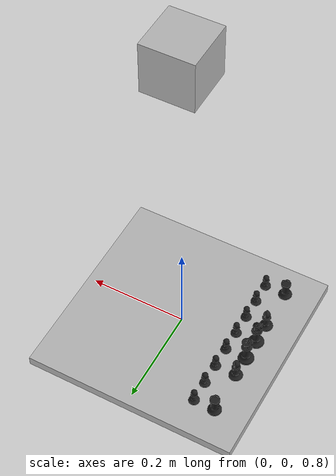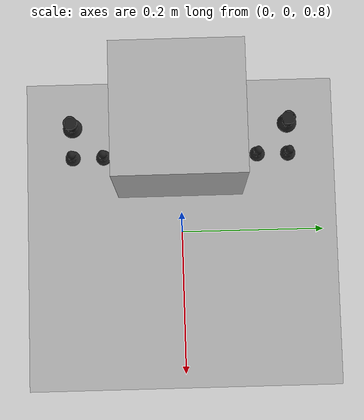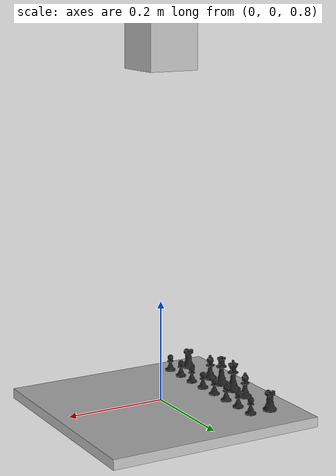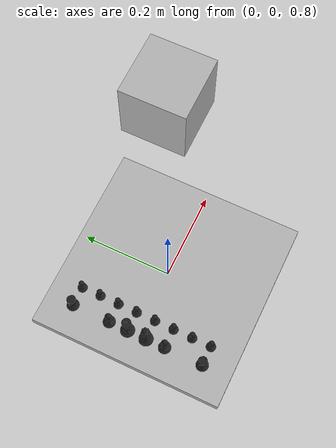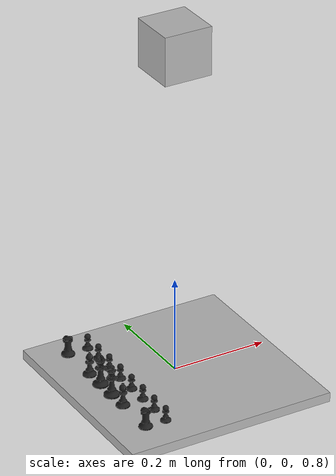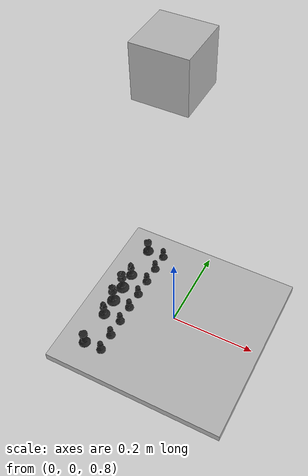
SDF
<sdf version="1.6">
 <world name="ur3_chess_game">
  <include><uri>model://sun</uri></include>
  <model name="camera">
   <static>1</static>
   <pose>0 0 1.50 3.14 1.57 0</pose>
   <link name="link">
    <visual name="visual"><geometry><box><size>0.1 0.1 0.1</size></box></geometry></visual>
    <sensor name="camera" type="camera">
     <camera>
      <save enabled="1"><path>/tmp/camera_out</path></save>
      <horizontal_fov>1.047</horizontal_fov>
      <image><width>1280</width><height>720</height></image>
      <clip><near>0.1</near><far>100</far></clip>
     </camera>
     <always_on>1</always_on>
     <update_rate>20</update_rate>
     <plugin name="camera_controller" filename="libgazebo_ros_camera.so">
      <alwaysOn>1</alwaysOn>
      <updateRate>0.0</updateRate>
      <cameraName>camera</cameraName>
      <imageTopicName>image_raw</imageTopicName>
      <cameraInfoTopicName>camera_info</cameraInfoTopicName>
      <frameName>camera_link_optical</frameName>
      <hackBaseline>0.0</hackBaseline>
      <distortionK1>0.0</distortionK1>
      <distortionK2>0.0</distortionK2>
      <distortionK3>0.0</distortionK3>
      <distortionT1>0.0</distortionT1>
      <distortionT2>0.0</distortionT2>
      <CxPrime>0</CxPrime>
      <Cx>0.0</Cx>
      <Cy>0.0</Cy>
      <focalLength>0.0</focalLength>
     </plugin>
    </sensor>
   </link>
  </model>
  <model name="chess_board">
   <pose>0 0 0.785 0 0 0</pose>
   <link name="link">
    <inertial>
     <mass>0.5</mass>
     <inertia>
      <ixx>0.166667</ixx>
      <ixy>0</ixy>
      <ixz>0</ixz>
      <iyy>0.166667</iyy>
      <iyz>0</iyz>
      <izz>0.166667</izz>
     </inertia>
    </inertial>
    <visual name="visual">
     <geometry><box><size>0.44 0.44 0.02</size></box></geometry>
     <material>
      <script>
       <name>ChessBoardMaterial</name>
       <uri>model://chess_board/materials/scripts</uri>
       <uri>model://chess_board/materials/textures</uri>
      </script>
     </material>
    </visual>
    <collision name="collision">
     <geometry><box><size>0.44 0.44 0.02</size></box></geometry>
     <surface>
      <friction>
       <ode><mu>1</mu><mu2>1</mu2><fdir1>0 0 0</fdir1><slip1>0</slip1><slip2>0</slip2></ode>
       <torsional>
        <coefficient>1</coefficient>
        <patch_radius>0</patch_radius>
        <surface_radius>0</surface_radius>
        <use_patch_radius>1</use_patch_radius>
        <ode><slip>0</slip></ode>
       </torsional>
      </friction>
      <bounce><restitution_coefficient>0</restitution_coefficient><threshold>1e+06</threshold></bounce>
      <contact>
       <collide_without_contact>0</collide_without_contact>
       <collide_without_contact_bitmask>1</collide_without_contact_bitmask>
       <collide_bitmask>1</collide_bitmask>
       <ode>
        <soft_cfm>0</soft_cfm>
        <soft_erp>0.2</soft_erp>
        <kp>1e+13</kp>
        <kd>1</kd>
        <max_vel>0.01</max_vel>
        <min_depth>0</min_depth>
       </ode>
       <bullet>
        <split_impulse>1</split_impulse>
        <split_impulse_penetration_threshold>-0.01</split_impulse_penetration_threshold>
        <soft_cfm>0</soft_cfm>
        <soft_erp>0.2</soft_erp>
        <kp>1e+13</kp>
        <kd>1</kd>
       </bullet>
      </contact>
     </surface>
    </collision>
   </link>
   <static>0</static>
  </model>
  <model name="pawn_black_1">
   <pose>-0.11 0.154 0.8 0 0 0</pose>
   <link name="link">
    <inertial>
     <mass>0.1</mass>
     <inertia>
      <ixx>0.166667</ixx>
      <ixy>0</ixy>
      <ixz>0</ixz>
      <iyy>0.166667</iyy>
      <iyz>0</iyz>
      <izz>0.166667</izz>
     </inertia>
    </inertial>
    <visual name="visual">
     <geometry><mesh><uri>model://pawn_black/pawn.stl</uri><scale>0.001 0.001 0.001</scale></mesh></geometry>
     <material>
      <lighting>1</lighting>
      <script><uri>file://media/materials/scripts/gazebo.material</uri><name>Gazebo/Black</name></script>
      <shader type="pixel"><normal_map>__default__</normal_map></shader>
      <ambient>0.3 0.3 0.3 1</ambient>
      <diffuse>0.3 0.3 0.3 1</diffuse>
      <specular>0.1 0.1 0.1 1</specular>
      <emissive>0 0 0 1</emissive>
     </material>
    </visual>
    <collision name="collision">
     <geometry><mesh><uri>model://pawn_black/pawn.stl</uri><scale>0.001 0.001 0.001</scale></mesh></geometry>
     <surface>
      <friction>
       <ode><mu>1</mu><mu2>1</mu2><fdir1>0 0 0</fdir1><slip1>0</slip1><slip2>0</slip2></ode>
       <torsional>
        <coefficient>1</coefficient>
        <patch_radius>0</patch_radius>
        <surface_radius>0</surface_radius>
        <use_patch_radius>1</use_patch_radius>
        <ode><slip>0</slip></ode>
       </torsional>
      </friction>
      <bounce><restitution_coefficient>0</restitution_coefficient><threshold>1e+06</threshold></bounce>
      <contact>
       <collide_without_contact>0</collide_without_contact>
       <collide_without_contact_bitmask>1</collide_without_contact_bitmask>
       <collide_bitmask>1</collide_bitmask>
       <ode>
        <soft_cfm>0</soft_cfm>
        <soft_erp>0.2</soft_erp>
        <kp>1e+13</kp>
        <kd>1</kd>
        <max_vel>0.01</max_vel>
        <min_depth>0</min_depth>
       </ode>
       <bullet>
        <split_impulse>1</split_impulse>
        <split_impulse_penetration_threshold>-0.01</split_impulse_penetration_threshold>
        <soft_cfm>0</soft_cfm>
        <soft_erp>0.2</soft_erp>
        <kp>1e+13</kp>
        <kd>1</kd>
       </bullet>
      </contact>
     </surface>
    </collision>
   </link>
   <static>0</static>
  </model>
  <model name="pawn_black_2">
   <pose>-0.11 0.11 0.8 0 0 0</pose>
   <link name="link">
    <inertial>
     <mass>0.1</mass>
     <inertia>
      <ixx>0.166667</ixx>
      <ixy>0</ixy>
      <ixz>0</ixz>
      <iyy>0.166667</iyy>
      <iyz>0</iyz>
      <izz>0.166667</izz>
     </inertia>
    </inertial>
    <visual name="visual">
     <geometry><mesh><uri>model://pawn_black/pawn.stl</uri><scale>0.001 0.001 0.001</scale></mesh></geometry>
     <material>
      <lighting>1</lighting>
      <script><uri>file://media/materials/scripts/gazebo.material</uri><name>Gazebo/Black</name></script>
      <shader type="pixel"><normal_map>__default__</normal_map></shader>
      <ambient>0.3 0.3 0.3 1</ambient>
      <diffuse>0.3 0.3 0.3 1</diffuse>
      <specular>0.1 0.1 0.1 1</specular>
      <emissive>0 0 0 1</emissive>
     </material>
    </visual>
    <collision name="collision">
     <geometry><mesh><uri>model://pawn_black/pawn.stl</uri><scale>0.001 0.001 0.001</scale></mesh></geometry>
     <surface>
      <friction>
       <ode><mu>1</mu><mu2>1</mu2><fdir1>0 0 0</fdir1><slip1>0</slip1><slip2>0</slip2></ode>
       <torsional>
        <coefficient>1</coefficient>
        <patch_radius>0</patch_radius>
        <surface_radius>0</surface_radius>
        <use_patch_radius>1</use_patch_radius>
        <ode><slip>0</slip></ode>
       </torsional>
      </friction>
      <bounce><restitution_coefficient>0</restitution_coefficient><threshold>1e+06</threshold></bounce>
      <contact>
       <collide_without_contact>0</collide_without_contact>
       <collide_without_contact_bitmask>1</collide_without_contact_bitmask>
       <collide_bitmask>1</collide_bitmask>
       <ode>
        <soft_cfm>0</soft_cfm>
        <soft_erp>0.2</soft_erp>
        <kp>1e+13</kp>
        <kd>1</kd>
        <max_vel>0.01</max_vel>
        <min_depth>0</min_depth>
       </ode>
       <bullet>
        <split_impulse>1</split_impulse>
        <split_impulse_penetration_threshold>-0.01</split_impulse_penetration_threshold>
        <soft_cfm>0</soft_cfm>
        <soft_erp>0.2</soft_erp>
        <kp>1e+13</kp>
        <kd>1</kd>
       </bullet>
      </contact>
     </surface>
    </collision>
   </link>
   <static>0</static>
  </model>
  <model name="pawn_black_3">
   <pose>-0.11 0.066 0.8 0 0 0</pose>
   <link name="link">
    <inertial>
     <mass>0.1</mass>
     <inertia>
      <ixx>0.166667</ixx>
      <ixy>0</ixy>
      <ixz>0</ixz>
      <iyy>0.166667</iyy>
      <iyz>0</iyz>
      <izz>0.166667</izz>
     </inertia>
    </inertial>
    <visual name="visual">
     <geometry><mesh><uri>model://pawn_black/pawn.stl</uri><scale>0.001 0.001 0.001</scale></mesh></geometry>
     <material>
      <lighting>1</lighting>
      <script><uri>file://media/materials/scripts/gazebo.material</uri><name>Gazebo/Black</name></script>
      <shader type="pixel"><normal_map>__default__</normal_map></shader>
      <ambient>0.3 0.3 0.3 1</ambient>
      <diffuse>0.3 0.3 0.3 1</diffuse>
      <specular>0.1 0.1 0.1 1</specular>
      <emissive>0 0 0 1</emissive>
     </material>
    </visual>
    <collision name="collision">
     <geometry><mesh><uri>model://pawn_black/pawn.stl</uri><scale>0.001 0.001 0.001</scale></mesh></geometry>
     <surface>
      <friction>
       <ode><mu>1</mu><mu2>1</mu2><fdir1>0 0 0</fdir1><slip1>0</slip1><slip2>0</slip2></ode>
       <torsional>
        <coefficient>1</coefficient>
        <patch_radius>0</patch_radius>
        <surface_radius>0</surface_radius>
        <use_patch_radius>1</use_patch_radius>
        <ode><slip>0</slip></ode>
       </torsional>
      </friction>
      <bounce><restitution_coefficient>0</restitution_coefficient><threshold>1e+06</threshold></bounce>
      <contact>
       <collide_without_contact>0</collide_without_contact>
       <collide_without_contact_bitmask>1</collide_without_contact_bitmask>
       <collide_bitmask>1</collide_bitmask>
       <ode>
        <soft_cfm>0</soft_cfm>
        <soft_erp>0.2</soft_erp>
        <kp>1e+13</kp>
        <kd>1</kd>
        <max_vel>0.01</max_vel>
        <min_depth>0</min_depth>
       </ode>
       <bullet>
        <split_impulse>1</split_impulse>
        <split_impulse_penetration_threshold>-0.01</split_impulse_penetration_threshold>
        <soft_cfm>0</soft_cfm>
        <soft_erp>0.2</soft_erp>
        <kp>1e+13</kp>
        <kd>1</kd>
       </bullet>
      </contact>
     </surface>
    </collision>
   </link>
   <static>0</static>
  </model>
  <model name="pawn_black_4">
   <pose>-0.11 0.022 0.8 0 0 0</pose>
   <link name="link">
    <inertial>
     <mass>0.1</mass>
     <inertia>
      <ixx>0.166667</ixx>
      <ixy>0</ixy>
      <ixz>0</ixz>
      <iyy>0.166667</iyy>
      <iyz>0</iyz>
      <izz>0.166667</izz>
     </inertia>
    </inertial>
    <visual name="visual">
     <geometry><mesh><uri>model://pawn_black/pawn.stl</uri><scale>0.001 0.001 0.001</scale></mesh></geometry>
     <material>
      <lighting>1</lighting>
      <script><uri>file://media/materials/scripts/gazebo.material</uri><name>Gazebo/Black</name></script>
      <shader type="pixel"><normal_map>__default__</normal_map></shader>
      <ambient>0.3 0.3 0.3 1</ambient>
      <diffuse>0.3 0.3 0.3 1</diffuse>
      <specular>0.1 0.1 0.1 1</specular>
      <emissive>0 0 0 1</emissive>
     </material>
    </visual>
    <collision name="collision">
     <geometry><mesh><uri>model://pawn_black/pawn.stl</uri><scale>0.001 0.001 0.001</scale></mesh></geometry>
     <surface>
      <friction>
       <ode><mu>1</mu><mu2>1</mu2><fdir1>0 0 0</fdir1><slip1>0</slip1><slip2>0</slip2></ode>
       <torsional>
        <coefficient>1</coefficient>
        <patch_radius>0</patch_radius>
        <surface_radius>0</surface_radius>
        <use_patch_radius>1</use_patch_radius>
        <ode><slip>0</slip></ode>
       </torsional>
      </friction>
      <bounce><restitution_coefficient>0</restitution_coefficient><threshold>1e+06</threshold></bounce>
      <contact>
       <collide_without_contact>0</collide_without_contact>
       <collide_without_contact_bitmask>1</collide_without_contact_bitmask>
       <collide_bitmask>1</collide_bitmask>
       <ode>
        <soft_cfm>0</soft_cfm>
        <soft_erp>0.2</soft_erp>
        <kp>1e+13</kp>
        <kd>1</kd>
        <max_vel>0.01</max_vel>
        <min_depth>0</min_depth>
       </ode>
       <bullet>
        <split_impulse>1</split_impulse>
        <split_impulse_penetration_threshold>-0.01</split_impulse_penetration_threshold>
        <soft_cfm>0</soft_cfm>
        <soft_erp>0.2</soft_erp>
        <kp>1e+13</kp>
        <kd>1</kd>
       </bullet>
      </contact>
     </surface>
    </collision>
   </link>
   <static>0</static>
  </model>
  <model name="pawn_black_5">
   <pose>-0.11 -0.022 0.8 0 0 0</pose>
   <link name="link">
    <inertial>
     <mass>0.1</mass>
     <inertia>
      <ixx>0.166667</ixx>
      <ixy>0</ixy>
      <ixz>0</ixz>
      <iyy>0.166667</iyy>
      <iyz>0</iyz>
      <izz>0.166667</izz>
     </inertia>
    </inertial>
    <visual name="visual">
     <geometry><mesh><uri>model://pawn_black/pawn.stl</uri><scale>0.001 0.001 0.001</scale></mesh></geometry>
     <material>
      <lighting>1</lighting>
      <script><uri>file://media/materials/scripts/gazebo.material</uri><name>Gazebo/Black</name></script>
      <shader type="pixel"><normal_map>__default__</normal_map></shader>
      <ambient>0.3 0.3 0.3 1</ambient>
      <diffuse>0.3 0.3 0.3 1</diffuse>
      <specular>0.1 0.1 0.1 1</specular>
      <emissive>0 0 0 1</emissive>
     </material>
    </visual>
    <collision name="collision">
     <geometry><mesh><uri>model://pawn_black/pawn.stl</uri><scale>0.001 0.001 0.001</scale></mesh></geometry>
     <surface>
      <friction>
       <ode><mu>1</mu><mu2>1</mu2><fdir1>0 0 0</fdir1><slip1>0</slip1><slip2>0</slip2></ode>
       <torsional>
        <coefficient>1</coefficient>
        <patch_radius>0</patch_radius>
        <surface_radius>0</surface_radius>
        <use_patch_radius>1</use_patch_radius>
        <ode><slip>0</slip></ode>
       </torsional>
      </friction>
      <bounce><restitution_coefficient>0</restitution_coefficient><threshold>1e+06</threshold></bounce>
      <contact>
       <collide_without_contact>0</collide_without_contact>
       <collide_without_contact_bitmask>1</collide_without_contact_bitmask>
       <collide_bitmask>1</collide_bitmask>
       <ode>
        <soft_cfm>0</soft_cfm>
        <soft_erp>0.2</soft_erp>
        <kp>1e+13</kp>
        <kd>1</kd>
        <max_vel>0.01</max_vel>
        <min_depth>0</min_depth>
       </ode>
       <bullet>
        <split_impulse>1</split_impulse>
        <split_impulse_penetration_threshold>-0.01</split_impulse_penetration_threshold>
        <soft_cfm>0</soft_cfm>
        <soft_erp>0.2</soft_erp>
        <kp>1e+13</kp>
        <kd>1</kd>
       </bullet>
      </contact>
     </surface>
    </collision>
   </link>
   <static>0</static>
  </model>
  <model name="pawn_black_6">
   <pose>-0.11 -0.066 0.8 0 0 0</pose>
   <link name="link">
    <inertial>
     <mass>0.1</mass>
     <inertia>
      <ixx>0.166667</ixx>
      <ixy>0</ixy>
      <ixz>0</ixz>
      <iyy>0.166667</iyy>
      <iyz>0</iyz>
      <izz>0.166667</izz>
     </inertia>
    </inertial>
    <visual name="visual">
     <geometry><mesh><uri>model://pawn_black/pawn.stl</uri><scale>0.001 0.001 0.001</scale></mesh></geometry>
     <material>
      <lighting>1</lighting>
      <script><uri>file://media/materials/scripts/gazebo.material</uri><name>Gazebo/Black</name></script>
      <shader type="pixel"><normal_map>__default__</normal_map></shader>
      <ambient>0.3 0.3 0.3 1</ambient>
      <diffuse>0.3 0.3 0.3 1</diffuse>
      <specular>0.1 0.1 0.1 1</specular>
      <emissive>0 0 0 1</emissive>
     </material>
    </visual>
    <collision name="collision">
     <geometry><mesh><uri>model://pawn_black/pawn.stl</uri><scale>0.001 0.001 0.001</scale></mesh></geometry>
     <surface>
      <friction>
       <ode><mu>1</mu><mu2>1</mu2><fdir1>0 0 0</fdir1><slip1>0</slip1><slip2>0</slip2></ode>
       <torsional>
        <coefficient>1</coefficient>
        <patch_radius>0</patch_radius>
        <surface_radius>0</surface_radius>
        <use_patch_radius>1</use_patch_radius>
        <ode><slip>0</slip></ode>
       </torsional>
      </friction>
      <bounce><restitution_coefficient>0</restitution_coefficient><threshold>1e+06</threshold></bounce>
      <contact>
       <collide_without_contact>0</collide_without_contact>
       <collide_without_contact_bitmask>1</collide_without_contact_bitmask>
       <collide_bitmask>1</collide_bitmask>
       <ode>
        <soft_cfm>0</soft_cfm>
        <soft_erp>0.2</soft_erp>
        <kp>1e+13</kp>
        <kd>1</kd>
        <max_vel>0.01</max_vel>
        <min_depth>0</min_depth>
       </ode>
       <bullet>
        <split_impulse>1</split_impulse>
        <split_impulse_penetration_threshold>-0.01</split_impulse_penetration_threshold>
        <soft_cfm>0</soft_cfm>
        <soft_erp>0.2</soft_erp>
        <kp>1e+13</kp>
        <kd>1</kd>
       </bullet>
      </contact>
     </surface>
    </collision>
   </link>
   <static>0</static>
  </model>
  <model name="pawn_black_7">
   <pose>-0.11 -0.11 0.8 0 0 0</pose>
   <link name="link">
    <inertial>
     <mass>0.1</mass>
     <inertia>
      <ixx>0.166667</ixx>
      <ixy>0</ixy>
      <ixz>0</ixz>
      <iyy>0.166667</iyy>
      <iyz>0</iyz>
      <izz>0.166667</izz>
     </inertia>
    </inertial>
    <visual name="visual">
     <geometry><mesh><uri>model://pawn_black/pawn.stl</uri><scale>0.001 0.001 0.001</scale></mesh></geometry>
     <material>
      <lighting>1</lighting>
      <script><uri>file://media/materials/scripts/gazebo.material</uri><name>Gazebo/Black</name></script>
      <shader type="pixel"><normal_map>__default__</normal_map></shader>
      <ambient>0.3 0.3 0.3 1</ambient>
      <diffuse>0.3 0.3 0.3 1</diffuse>
      <specular>0.1 0.1 0.1 1</specular>
      <emissive>0 0 0 1</emissive>
     </material>
    </visual>
    <collision name="collision">
     <geometry><mesh><uri>model://pawn_black/pawn.stl</uri><scale>0.001 0.001 0.001</scale></mesh></geometry>
     <surface>
      <friction>
       <ode><mu>1</mu><mu2>1</mu2><fdir1>0 0 0</fdir1><slip1>0</slip1><slip2>0</slip2></ode>
       <torsional>
        <coefficient>1</coefficient>
        <patch_radius>0</patch_radius>
        <surface_radius>0</surface_radius>
        <use_patch_radius>1</use_patch_radius>
        <ode><slip>0</slip></ode>
       </torsional>
      </friction>
      <bounce><restitution_coefficient>0</restitution_coefficient><threshold>1e+06</threshold></bounce>
      <contact>
       <collide_without_contact>0</collide_without_contact>
       <collide_without_contact_bitmask>1</collide_without_contact_bitmask>
       <collide_bitmask>1</collide_bitmask>
       <ode>
        <soft_cfm>0</soft_cfm>
        <soft_erp>0.2</soft_erp>
        <kp>1e+13</kp>
        <kd>1</kd>
        <max_vel>0.01</max_vel>
        <min_depth>0</min_depth>
       </ode>
       <bullet>
        <split_impulse>1</split_impulse>
        <split_impulse_penetration_threshold>-0.01</split_impulse_penetration_threshold>
        <soft_cfm>0</soft_cfm>
        <soft_erp>0.2</soft_erp>
        <kp>1e+13</kp>
        <kd>1</kd>
       </bullet>
      </contact>
     </surface>
    </collision>
   </link>
   <static>0</static>
  </model>
  <model name="pawn_black_8">
   <pose>-0.11 -0.154 0.8 0 0 0</pose>
   <link name="link">
    <inertial>
     <mass>0.1</mass>
     <inertia>
      <ixx>0.166667</ixx>
      <ixy>0</ixy>
      <ixz>0</ixz>
      <iyy>0.166667</iyy>
      <iyz>0</iyz>
      <izz>0.166667</izz>
     </inertia>
    </inertial>
    <visual name="visual">
     <geometry><mesh><uri>model://pawn_black/pawn.stl</uri><scale>0.001 0.001 0.001</scale></mesh></geometry>
     <material>
      <lighting>1</lighting>
      <script><uri>file://media/materials/scripts/gazebo.material</uri><name>Gazebo/Black</name></script>
      <shader type="pixel"><normal_map>__default__</normal_map></shader>
      <ambient>0.3 0.3 0.3 1</ambient>
      <diffuse>0.3 0.3 0.3 1</diffuse>
      <specular>0.1 0.1 0.1 1</specular>
      <emissive>0 0 0 1</emissive>
     </material>
    </visual>
    <collision name="collision">
     <geometry><mesh><uri>model://pawn_black/pawn.stl</uri><scale>0.001 0.001 0.001</scale></mesh></geometry>
     <surface>
      <friction>
       <ode><mu>1</mu><mu2>1</mu2><fdir1>0 0 0</fdir1><slip1>0</slip1><slip2>0</slip2></ode>
       <torsional>
        <coefficient>1</coefficient>
        <patch_radius>0</patch_radius>
        <surface_radius>0</surface_radius>
        <use_patch_radius>1</use_patch_radius>
        <ode><slip>0</slip></ode>
       </torsional>
      </friction>
      <bounce><restitution_coefficient>0</restitution_coefficient><threshold>1e+06</threshold></bounce>
      <contact>
       <collide_without_contact>0</collide_without_contact>
       <collide_without_contact_bitmask>1</collide_without_contact_bitmask>
       <collide_bitmask>1</collide_bitmask>
       <ode>
        <soft_cfm>0</soft_cfm>
        <soft_erp>0.2</soft_erp>
        <kp>1e+13</kp>
        <kd>1</kd>
        <max_vel>0.01</max_vel>
        <min_depth>0</min_depth>
       </ode>
       <bullet>
        <split_impulse>1</split_impulse>
        <split_impulse_penetration_threshold>-0.01</split_impulse_penetration_threshold>
        <soft_cfm>0</soft_cfm>
        <soft_erp>0.2</soft_erp>
        <kp>1e+13</kp>
        <kd>1</kd>
       </bullet>
      </contact>
     </surface>
    </collision>
   </link>
   <static>0</static>
  </model>
  <model name="rook_black_1">
   <pose>-0.154 0.154 0.8 0 0 0</pose>
   <link name="link">
    <inertial>
     <mass>0.1</mass>
     <inertia>
      <ixx>0.166667</ixx>
      <ixy>0</ixy>
      <ixz>0</ixz>
      <iyy>0.166667</iyy>
      <iyz>0</iyz>
      <izz>0.166667</izz>
     </inertia>
    </inertial>
    <visual name="visual">
     <geometry><mesh><uri>model://rook_black/rook.stl</uri><scale>0.001 0.001 0.001</scale></mesh></geometry>
     <material>
      <lighting>1</lighting>
      <script><uri>file://media/materials/scripts/gazebo.material</uri><name>Gazebo/Black</name></script>
      <shader type="pixel"><normal_map>__default__</normal_map></shader>
      <ambient>0.3 0.3 0.3 1</ambient>
      <diffuse>0.3 0.3 0.3 1</diffuse>
      <specular>0.1 0.1 0.1 1</specular>
      <emissive>0 0 0 1</emissive>
     </material>
    </visual>
    <collision name="collision">
     <geometry><mesh><uri>model://rook_black/rook.stl</uri><scale>0.001 0.001 0.001</scale></mesh></geometry>
     <surface>
      <friction>
       <ode><mu>1</mu><mu2>1</mu2><fdir1>0 0 0</fdir1><slip1>0</slip1><slip2>0</slip2></ode>
       <torsional>
        <coefficient>1</coefficient>
        <patch_radius>0</patch_radius>
        <surface_radius>0</surface_radius>
        <use_patch_radius>1</use_patch_radius>
        <ode><slip>0</slip></ode>
       </torsional>
      </friction>
      <bounce><restitution_coefficient>0</restitution_coefficient><threshold>1e+06</threshold></bounce>
      <contact>
       <collide_without_contact>0</collide_without_contact>
       <collide_without_contact_bitmask>1</collide_without_contact_bitmask>
       <collide_bitmask>1</collide_bitmask>
       <ode>
        <soft_cfm>0</soft_cfm>
        <soft_erp>0.2</soft_erp>
        <kp>1e+13</kp>
        <kd>1</kd>
        <max_vel>0.01</max_vel>
        <min_depth>0</min_depth>
       </ode>
       <bullet>
        <split_impulse>1</split_impulse>
        <split_impulse_penetration_threshold>-0.01</split_impulse_penetration_threshold>
        <soft_cfm>0</soft_cfm>
        <soft_erp>0.2</soft_erp>
        <kp>1e+13</kp>
        <kd>1</kd>
       </bullet>
      </contact>
     </surface>
    </collision>
   </link>
   <static>0</static>
  </model>
  <model name="rook_black_2">
   <pose>-0.154 -0.154 0.8 0 0 0</pose>
   <link name="link">
    <inertial>
     <mass>0.1</mass>
     <inertia>
      <ixx>0.166667</ixx>
      <ixy>0</ixy>
      <ixz>0</ixz>
      <iyy>0.166667</iyy>
      <iyz>0</iyz>
      <izz>0.166667</izz>
     </inertia>
    </inertial>
    <visual name="visual">
     <geometry><mesh><uri>model://rook_black/rook.stl</uri><scale>0.001 0.001 0.001</scale></mesh></geometry>
     <material>
      <lighting>1</lighting>
      <script><uri>file://media/materials/scripts/gazebo.material</uri><name>Gazebo/Black</name></script>
      <shader type="pixel"><normal_map>__default__</normal_map></shader>
      <ambient>0.3 0.3 0.3 1</ambient>
      <diffuse>0.3 0.3 0.3 1</diffuse>
      <specular>0.1 0.1 0.1 1</specular>
      <emissive>0 0 0 1</emissive>
     </material>
    </visual>
    <collision name="collision">
     <geometry><mesh><uri>model://rook_black/rook.stl</uri><scale>0.001 0.001 0.001</scale></mesh></geometry>
     <surface>
      <friction>
       <ode><mu>1</mu><mu2>1</mu2><fdir1>0 0 0</fdir1><slip1>0</slip1><slip2>0</slip2></ode>
       <torsional>
        <coefficient>1</coefficient>
        <patch_radius>0</patch_radius>
        <surface_radius>0</surface_radius>
        <use_patch_radius>1</use_patch_radius>
        <ode><slip>0</slip></ode>
       </torsional>
      </friction>
      <bounce><restitution_coefficient>0</restitution_coefficient><threshold>1e+06</threshold></bounce>
      <contact>
       <collide_without_contact>0</collide_without_contact>
       <collide_without_contact_bitmask>1</collide_without_contact_bitmask>
       <collide_bitmask>1</collide_bitmask>
       <ode>
        <soft_cfm>0</soft_cfm>
        <soft_erp>0.2</soft_erp>
        <kp>1e+13</kp>
        <kd>1</kd>
        <max_vel>0.01</max_vel>
        <min_depth>0</min_depth>
       </ode>
       <bullet>
        <split_impulse>1</split_impulse>
        <split_impulse_penetration_threshold>-0.01</split_impulse_penetration_threshold>
        <soft_cfm>0</soft_cfm>
        <soft_erp>0.2</soft_erp>
        <kp>1e+13</kp>
        <kd>1</kd>
       </bullet>
      </contact>
     </surface>
    </collision>
   </link>
   <static>0</static>
  </model>
  <model name="bishop_black_1">
   <pose>-0.154 0.066 0.8 0 0 3.14</pose>
   <link name="link">
    <inertial>
     <mass>0.1</mass>
     <inertia>
      <ixx>0.166667</ixx>
      <ixy>0</ixy>
      <ixz>0</ixz>
      <iyy>0.166667</iyy>
      <iyz>0</iyz>
      <izz>0.166667</izz>
     </inertia>
    </inertial>
    <visual name="visual">
     <geometry><mesh><uri>model://bishop_black/bishop.stl</uri><scale>0.001 0.001 0.001</scale></mesh></geometry>
     <material>
      <lighting>1</lighting>
      <script><uri>file://media/materials/scripts/gazebo.material</uri><name>Gazebo/Black</name></script>
      <shader type="pixel"><normal_map>__default__</normal_map></shader>
      <ambient>0.3 0.3 0.3 1</ambient>
      <diffuse>0.3 0.3 0.3 1</diffuse>
      <specular>0.1 0.1 0.1 1</specular>
      <emissive>0 0 0 1</emissive>
     </material>
    </visual>
    <collision name="collision">
     <geometry><mesh><uri>model://bishop_black/bishop.stl</uri><scale>0.001 0.001 0.001</scale></mesh></geometry>
     <surface>
      <friction>
       <ode><mu>1</mu><mu2>1</mu2><fdir1>0 0 0</fdir1><slip1>0</slip1><slip2>0</slip2></ode>
       <torsional>
        <coefficient>1</coefficient>
        <patch_radius>0</patch_radius>
        <surface_radius>0</surface_radius>
        <use_patch_radius>1</use_patch_radius>
        <ode><slip>0</slip></ode>
       </torsional>
      </friction>
      <bounce><restitution_coefficient>0</restitution_coefficient><threshold>1e+06</threshold></bounce>
      <contact>
       <collide_without_contact>0</collide_without_contact>
       <collide_without_contact_bitmask>1</collide_without_contact_bitmask>
       <collide_bitmask>1</collide_bitmask>
       <ode>
        <soft_cfm>0</soft_cfm>
        <soft_erp>0.2</soft_erp>
        <kp>1e+13</kp>
        <kd>1</kd>
        <max_vel>0.01</max_vel>
        <min_depth>0</min_depth>
       </ode>
       <bullet>
        <split_impulse>1</split_impulse>
        <split_impulse_penetration_threshold>-0.01</split_impulse_penetration_threshold>
        <soft_cfm>0</soft_cfm>
        <soft_erp>0.2</soft_erp>
        <kp>1e+13</kp>
        <kd>1</kd>
       </bullet>
      </contact>
     </surface>
    </collision>
   </link>
   <static>0</static>
  </model>
  <model name="bishop_black_2">
   <pose>-0.154 -0.066 0.8 0 0 3.14</pose>
   <link name="link">
    <inertial>
     <mass>0.1</mass>
     <inertia>
      <ixx>0.166667</ixx>
      <ixy>0</ixy>
      <ixz>0</ixz>
      <iyy>0.166667</iyy>
      <iyz>0</iyz>
      <izz>0.166667</izz>
     </inertia>
    </inertial>
    <visual name="visual">
     <geometry><mesh><uri>model://bishop_black/bishop.stl</uri><scale>0.001 0.001 0.001</scale></mesh></geometry>
     <material>
      <lighting>1</lighting>
      <script><uri>file://media/materials/scripts/gazebo.material</uri><name>Gazebo/Black</name></script>
      <shader type="pixel"><normal_map>__default__</normal_map></shader>
      <ambient>0.3 0.3 0.3 1</ambient>
      <diffuse>0.3 0.3 0.3 1</diffuse>
      <specular>0.1 0.1 0.1 1</specular>
      <emissive>0 0 0 1</emissive>
     </material>
    </visual>
    <collision name="collision">
     <geometry><mesh><uri>model://bishop_black/bishop.stl</uri><scale>0.001 0.001 0.001</scale></mesh></geometry>
     <surface>
      <friction>
       <ode><mu>1</mu><mu2>1</mu2><fdir1>0 0 0</fdir1><slip1>0</slip1><slip2>0</slip2></ode>
       <torsional>
        <coefficient>1</coefficient>
        <patch_radius>0</patch_radius>
        <surface_radius>0</surface_radius>
        <use_patch_radius>1</use_patch_radius>
        <ode><slip>0</slip></ode>
       </torsional>
      </friction>
      <bounce><restitution_coefficient>0</restitution_coefficient><threshold>1e+06</threshold></bounce>
      <contact>
       <collide_without_contact>0</collide_without_contact>
       <collide_without_contact_bitmask>1</collide_without_contact_bitmask>
       <collide_bitmask>1</collide_bitmask>
       <ode>
        <soft_cfm>0</soft_cfm>
        <soft_erp>0.2</soft_erp>
        <kp>1e+13</kp>
        <kd>1</kd>
        <max_vel>0.01</max_vel>
        <min_depth>0</min_depth>
       </ode>
       <bullet>
        <split_impulse>1</split_impulse>
        <split_impulse_penetration_threshold>-0.01</split_impulse_penetration_threshold>
        <soft_cfm>0</soft_cfm>
        <soft_erp>0.2</soft_erp>
        <kp>1e+13</kp>
        <kd>1</kd>
       </bullet>
      </contact>
     </surface>
    </collision>
   </link>
   <static>0</static>
  </model>
  <model name="queen_black">
   <pose>-0.154 -0.022 0.8 0 0 0</pose>
   <link name="link">
    <inertial>
     <mass>0.1</mass>
     <inertia>
      <ixx>0.166667</ixx>
      <ixy>0</ixy>
      <ixz>0</ixz>
      <iyy>0.166667</iyy>
      <iyz>0</iyz>
      <izz>0.166667</izz>
     </inertia>
    </inertial>
    <visual name="visual">
     <geometry><mesh><uri>model://queen_black/queen.stl</uri><scale>0.001 0.001 0.001</scale></mesh></geometry>
     <material>
      <lighting>1</lighting>
      <script><uri>file://media/materials/scripts/gazebo.material</uri><name>Gazebo/Black</name></script>
      <shader type="pixel"><normal_map>__default__</normal_map></shader>
      <ambient>0.3 0.3 0.3 1</ambient>
      <diffuse>0.3 0.3 0.3 1</diffuse>
      <specular>0.1 0.1 0.1 1</specular>
      <emissive>0 0 0 1</emissive>
     </material>
    </visual>
    <collision name="collision">
     <geometry><mesh><uri>model://queen_black/queen.stl</uri><scale>0.001 0.001 0.001</scale></mesh></geometry>
     <surface>
      <friction>
       <ode><mu>1</mu><mu2>1</mu2><fdir1>0 0 0</fdir1><slip1>0</slip1><slip2>0</slip2></ode>
       <torsional>
        <coefficient>1</coefficient>
        <patch_radius>0</patch_radius>
        <surface_radius>0</surface_radius>
        <use_patch_radius>1</use_patch_radius>
        <ode><slip>0</slip></ode>
       </torsional>
      </friction>
      <bounce><restitution_coefficient>0</restitution_coefficient><threshold>1e+06</threshold></bounce>
      <contact>
       <collide_without_contact>0</collide_without_contact>
       <collide_without_contact_bitmask>1</collide_without_contact_bitmask>
       <collide_bitmask>1</collide_bitmask>
       <ode>
        <soft_cfm>0</soft_cfm>
        <soft_erp>0.2</soft_erp>
        <kp>1e+13</kp>
        <kd>1</kd>
        <max_vel>0.01</max_vel>
        <min_depth>0</min_depth>
       </ode>
       <bullet>
        <split_impulse>1</split_impulse>
        <split_impulse_penetration_threshold>-0.01</split_impulse_penetration_threshold>
        <soft_cfm>0</soft_cfm>
        <soft_erp>0.2</soft_erp>
        <kp>1e+13</kp>
        <kd>1</kd>
       </bullet>
      </contact>
     </surface>
    </collision>
   </link>
   <static>0</static>
  </model>
  <model name="king_black">
   <pose>-0.154 0.022 0.8 0 0 1.57</pose>
   <link name="link">
    <inertial>
     <mass>0.1</mass>
     <inertia>
      <ixx>0.166667</ixx>
      <ixy>0</ixy>
      <ixz>0</ixz>
      <iyy>0.166667</iyy>
      <iyz>0</iyz>
      <izz>0.166667</izz>
     </inertia>
    </inertial>
    <visual name="visual">
     <geometry><mesh><uri>model://king_black/king.stl</uri><scale>0.001 0.001 0.001</scale></mesh></geometry>
     <material>
      <lighting>1</lighting>
      <script><uri>file://media/materials/scripts/gazebo.material</uri><name>Gazebo/Black</name></script>
      <shader type="pixel"><normal_map>__default__</normal_map></shader>
      <ambient>0.3 0.3 0.3 1</ambient>
      <diffuse>0.3 0.3 0.3 1</diffuse>
      <specular>0.1 0.1 0.1 1</specular>
      <emissive>0 0 0 1</emissive>
     </material>
    </visual>
    <collision name="collision">
     <geometry><mesh><uri>model://king_black/king.stl</uri><scale>0.001 0.001 0.001</scale></mesh></geometry>
     <surface>
      <friction>
       <ode><mu>1</mu><mu2>1</mu2><fdir1>0 0 0</fdir1><slip1>0</slip1><slip2>0</slip2></ode>
       <torsional>
        <coefficient>1</coefficient>
        <patch_radius>0</patch_radius>
        <surface_radius>0</surface_radius>
        <use_patch_radius>1</use_patch_radius>
        <ode><slip>0</slip></ode>
       </torsional>
      </friction>
      <bounce><restitution_coefficient>0</restitution_coefficient><threshold>1e+06</threshold></bounce>
      <contact>
       <collide_without_contact>0</collide_without_contact>
       <collide_without_contact_bitmask>1</collide_without_contact_bitmask>
       <collide_bitmask>1</collide_bitmask>
       <ode>
        <soft_cfm>0</soft_cfm>
        <soft_erp>0.2</soft_erp>
        <kp>1e+13</kp>
        <kd>1</kd>
        <max_vel>0.01</max_vel>
        <min_depth>0</min_depth>
       </ode>
       <bullet>
        <split_impulse>1</split_impulse>
        <split_impulse_penetration_threshold>-0.01</split_impulse_penetration_threshold>
        <soft_cfm>0</soft_cfm>
        <soft_erp>0.2</soft_erp>
        <kp>1e+13</kp>
        <kd>1</kd>
       </bullet>
      </contact>
     </surface>
    </collision>
   </link>
   <static>0</static>
  </model>
 </world>
</sdf>
